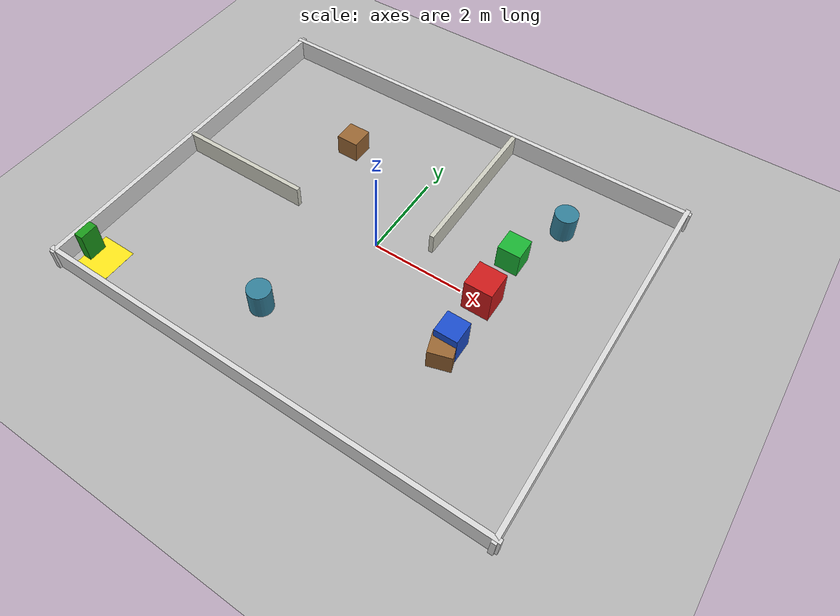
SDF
<?xml version="1.0"?>
<!-- 室内巡检场景：围墙 + 房间分隔 + 障碍物 + 充电桩标记区 -->
<sdf version="1.9">
  <world name="indoor">

    <!-- 物理引擎 -->
    <physics name="1ms" type="ignored">
      <max_step_size>0.01</max_step_size>
      <real_time_factor>1.0</real_time_factor>
    </physics>

    <!-- 场景插件 -->
    <plugin filename="gz-sim-physics-system" name="gz::sim::systems::Physics"/>
    <plugin filename="gz-sim-user-commands-system" name="gz::sim::systems::UserCommands"/>
    <plugin filename="gz-sim-scene-broadcaster-system" name="gz::sim::systems::SceneBroadcaster"/>
    <plugin filename="gz-sim-sensors-system" name="gz::sim::systems::Sensors">
      <render_engine>ogre2</render_engine>
    </plugin>
    <plugin filename="gz-sim-imu-system" name="gz::sim::systems::Imu"/>

    <light type="directional" name="sun">
      <cast_shadows>true</cast_shadows>
      <pose>0 0 10 0 0 0</pose>
      <diffuse>0.8 0.8 0.8 1</diffuse>
      <specular>0.2 0.2 0.2 1</specular>
      <attenuation>
        <range>1000</range>
        <constant>0.9</constant>
        <linear>0.01</linear>
        <quadratic>0.001</quadratic>
      </attenuation>
      <direction>-0.5 0.1 -0.9</direction>
    </light>

    <!-- 地面 -->
    <model name="ground_plane">
      <static>true</static>
      <link name="link">
        <collision name="collision">
          <geometry>
            <plane>
              <normal>0 0 1</normal>
              <size>30 30</size>
            </plane>
          </geometry>
          <!-- 地面摩擦：配合轮摩擦与 max_wheel_torque，
               使撞墙时轮子打滑而非完美空转，避免轮式里程计累积巨大漂移 -->
          <surface>
            <friction>
              <ode>
                <mu>1.0</mu>
                <mu2>1.0</mu2>
              </ode>
            </friction>
          </surface>
        </collision>
        <visual name="visual">
          <geometry>
            <plane>
              <normal>0 0 1</normal>
              <size>30 30</size>
            </plane>
          </geometry>
          <material>
            <ambient>0.7 0.7 0.7 1</ambient>
            <diffuse>0.7 0.7 0.7 1</diffuse>
            <specular>0.1 0.1 0.1 1</specular>
          </material>
        </visual>
      </link>
    </model>

    <!-- 围墙（10m x 8m 区域，墙高 0.5m 厚 0.1m） -->
    <!-- 北墙 y=4 -->
    <model name="wall_north">
      <static>true</static>
      <pose>0 4.0 0.25 0 0 0</pose>
      <link name="link">
        <collision name="c"><geometry><box><size>10.2 0.1 0.5</size></box></geometry></collision>
        <visual name="v"><geometry><box><size>10.2 0.1 0.5</size></box></geometry>
          <material><ambient>0.85 0.85 0.85 1</ambient><diffuse>0.85 0.85 0.85 1</diffuse></material>
        </visual>
      </link>
    </model>
    <!-- 南墙 y=-4 -->
    <model name="wall_south">
      <static>true</static>
      <pose>0 -4.0 0.25 0 0 0</pose>
      <link name="link">
        <collision name="c"><geometry><box><size>10.2 0.1 0.5</size></box></geometry></collision>
        <visual name="v"><geometry><box><size>10.2 0.1 0.5</size></box></geometry>
          <material><ambient>0.85 0.85 0.85 1</ambient><diffuse>0.85 0.85 0.85 1</diffuse></material>
        </visual>
      </link>
    </model>
    <!-- 东墙 x=5 -->
    <model name="wall_east">
      <static>true</static>
      <pose>5.0 0 0.25 0 0 0</pose>
      <link name="link">
        <collision name="c"><geometry><box><size>0.1 8.2 0.5</size></box></geometry></collision>
        <visual name="v"><geometry><box><size>0.1 8.2 0.5</size></box></geometry>
          <material><ambient>0.85 0.85 0.85 1</ambient><diffuse>0.85 0.85 0.85 1</diffuse></material>
        </visual>
      </link>
    </model>
    <!-- 西墙 x=-5 -->
    <model name="wall_west">
      <static>true</static>
      <pose>-5.0 0 0.25 0 0 0</pose>
      <link name="link">
        <collision name="c"><geometry><box><size>0.1 8.2 0.5</size></box></geometry></collision>
        <visual name="v"><geometry><box><size>0.1 8.2 0.5</size></box></geometry>
          <material><ambient>0.85 0.85 0.85 1</ambient><diffuse>0.85 0.85 0.85 1</diffuse></material>
        </visual>
      </link>
    </model>

    <!-- 房间分隔：x=1 处纵墙（y 从 0.5 到 4，留出 y<0.5 的门洞） -->
    <model name="partition_v1">
      <static>true</static>
      <pose>1.0 2.25 0.25 0 0 0</pose>
      <link name="link">
        <collision name="c"><geometry><box><size>0.1 3.5 0.5</size></box></geometry></collision>
        <visual name="v"><geometry><box><size>0.1 3.5 0.5</size></box></geometry>
          <material><ambient>0.8 0.8 0.75 1</ambient><diffuse>0.8 0.8 0.75 1</diffuse></material>
        </visual>
      </link>
    </model>
    <!-- 房间分隔：y=0 处横墙（x 从 -5 到 -2，留出 x>-2 的门洞） -->
    <model name="partition_h1">
      <static>true</static>
      <pose>-3.5 0 0.25 0 0 0</pose>
      <link name="link">
        <collision name="c"><geometry><box><size>3.0 0.1 0.5</size></box></geometry></collision>
        <visual name="v"><geometry><box><size>3.0 0.1 0.5</size></box></geometry>
          <material><ambient>0.8 0.8 0.75 1</ambient><diffuse>0.8 0.8 0.75 1</diffuse></material>
        </visual>
      </link>
    </model>

    <!-- 障碍物：箱子 x3 -->
    <model name="box_1">
      <static>true</static>
      <pose>-2.0 2.0 0.25 0 0 0</pose>
      <link name="link">
        <collision name="c"><geometry><box><size>0.5 0.5 0.5</size></box></geometry></collision>
        <visual name="v"><geometry><box><size>0.5 0.5 0.5</size></box></geometry>
          <material><ambient>0.6 0.4 0.2 1</ambient><diffuse>0.6 0.4 0.2 1</diffuse></material>
        </visual>
      </link>
    </model>
    <model name="box_2">
      <static>true</static>
      <pose>2.5 -1.5 0.25 0 0 0.3</pose>
      <link name="link">
        <collision name="c"><geometry><box><size>0.5 0.5 0.5</size></box></geometry></collision>
        <visual name="v"><geometry><box><size>0.5 0.5 0.5</size></box></geometry>
          <material><ambient>0.6 0.4 0.2 1</ambient><diffuse>0.6 0.4 0.2 1</diffuse></material>
        </visual>
      </link>
    </model>
    <!-- 障碍物：圆柱 -->
    <model name="cylinder_1">
      <static>true</static>
      <pose>3.0 2.5 0.3 0 0 0</pose>
      <link name="link">
        <collision name="c"><geometry><cylinder><radius>0.25</radius><length>0.6</length></cylinder></geometry></collision>
        <visual name="v"><geometry><cylinder><radius>0.25</radius><length>0.6</length></cylinder></geometry>
          <material><ambient>0.2 0.5 0.6 1</ambient><diffuse>0.2 0.5 0.6 1</diffuse></material>
        </visual>
      </link>
    </model>
    <model name="cylinder_2">
      <static>true</static>
      <pose>-1.0 -2.5 0.3 0 0 0</pose>
      <link name="link">
        <collision name="c"><geometry><cylinder><radius>0.25</radius><length>0.6</length></cylinder></geometry></collision>
        <visual name="v"><geometry><cylinder><radius>0.25</radius><length>0.6</length></cylinder></geometry>
          <material><ambient>0.2 0.5 0.6 1</ambient><diffuse>0.2 0.5 0.6 1</diffuse></material>
        </visual>
      </link>
    </model>

    <!-- 正前方彩色障碍物（摄像头视野内容） -->
    <model name="front_box_red">
      <static>true</static>
      <pose>2.5 0.0 0.4 0 0 0</pose>
      <link name="link">
        <collision name="c"><geometry><box><size>0.6 0.6 0.8</size></box></geometry></collision>
        <visual name="v"><geometry><box><size>0.6 0.6 0.8</size></box></geometry>
          <material><ambient>0.8 0.1 0.1 1</ambient><diffuse>0.8 0.1 0.1 1</diffuse></material>
        </visual>
      </link>
    </model>
    <model name="front_box_green">
      <static>true</static>
      <pose>2.5 1.2 0.3 0 0 0</pose>
      <link name="link">
        <collision name="c"><geometry><box><size>0.5 0.5 0.6</size></box></geometry></collision>
        <visual name="v"><geometry><box><size>0.5 0.5 0.6</size></box></geometry>
          <material><ambient>0.1 0.7 0.2 1</ambient><diffuse>0.1 0.7 0.2 1</diffuse></material>
        </visual>
      </link>
    </model>
    <model name="front_box_blue">
      <static>true</static>
      <pose>2.5 -1.2 0.35 0 0 0</pose>
      <link name="link">
        <collision name="c"><geometry><box><size>0.5 0.5 0.7</size></box></geometry></collision>
        <visual name="v"><geometry><box><size>0.5 0.5 0.7</size></box></geometry>
          <material><ambient>0.1 0.3 0.8 1</ambient><diffuse>0.1 0.3 0.8 1</diffuse></material>
        </visual>
      </link>
    </model>

    <!-- 充电桩标记区（西南角，黄色地面标记 + 小立柱） -->
    <model name="charge_dock_marker">
      <static>true</static>
      <pose>-4.4 -3.4 0.001 0 0 0</pose>
      <link name="link">
        <collision name="c"><geometry><box><size>0.8 0.8 0.002</size></box></geometry></collision>
        <visual name="v"><geometry><box><size>0.8 0.8 0.002</size></box></geometry>
          <material><ambient>1.0 0.9 0.1 1</ambient><diffuse>1.0 0.9 0.1 1</diffuse></material>
        </visual>
      </link>
    </model>
    <model name="charge_dock_post">
      <static>true</static>
      <pose>-4.7 -3.4 0.35 0 0 0</pose>
      <link name="link">
        <collision name="c"><geometry><box><size>0.2 0.4 0.7</size></box></geometry></collision>
        <visual name="v"><geometry><box><size>0.2 0.4 0.7</size></box></geometry>
          <material><ambient>0.1 0.6 0.1 1</ambient><diffuse>0.1 0.6 0.1 1</diffuse></material>
        </visual>
      </link>
    </model>

  </world>
</sdf>
